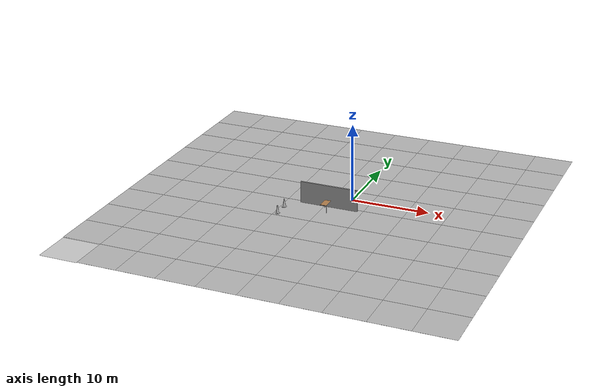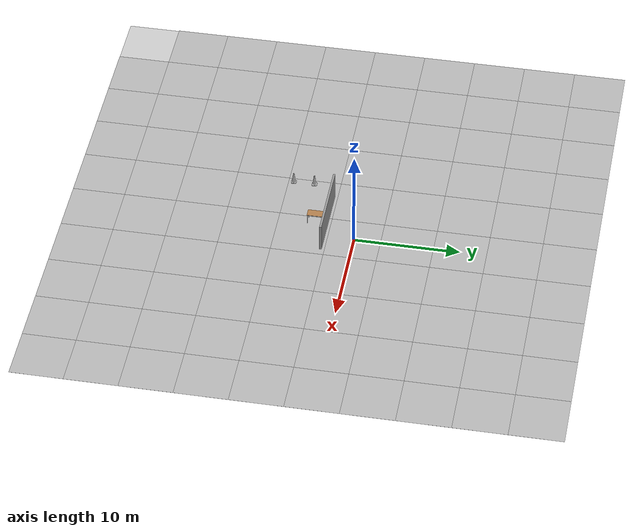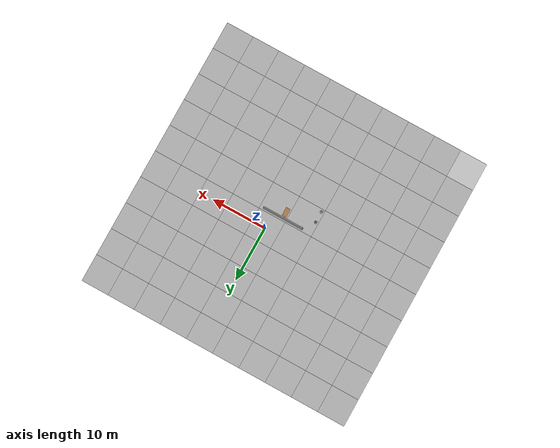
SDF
<sdf version="1.4">
 <world name="vrc_task_3">
  <scene><grid>false</grid><ambient>0.2 0.2 0.2 1.0</ambient></scene>
  <physics type="ode">
   <gravity>0 0 -9.81</gravity>
   <ode>
    <solver><type>quick</type><iters>50</iters><sor>1.4</sor></solver>
    <constraints>
     <cfm>0.0</cfm>
     <erp>0.2</erp>
     <contact_max_correcting_vel>100.0</contact_max_correcting_vel>
     <contact_surface_layer>0.0</contact_surface_layer>
    </constraints>
   </ode>
   <real_time_update_rate>1000</real_time_update_rate>
   <max_step_size>0.001</max_step_size>
  </physics>
  <light type="directional" name="sun">
   <pose>0 0 100 0 0 0</pose>
   <diffuse>0.9 0.9 0.9 1</diffuse>
   <specular>0.1 0.1 0.1 1</specular>
   <attenuation>
    <range>1000</range>
    <constant>0.9</constant>
    <linear>0.01</linear>
    <quadratic>0.001</quadratic>
   </attenuation>
   <direction>0.2 0.2 -0.9</direction>
  </light>
  <light type="point" name="light_bulb_2">
   <cast_shadows>false</cast_shadows>
   <pose>-10.6 -19.8 5 0 0 0</pose>
   <diffuse>0.5 0.5 0.5 1</diffuse>
   <specular>0.0 0.0 0.0 1</specular>
   <attenuation>
    <range>80</range>
    <constant>0.9</constant>
    <linear>0.01</linear>
    <quadratic>0.001</quadratic>
   </attenuation>
  </light>
  <include><uri>model://pavement_plane</uri></include>
  <include><uri>model://grey_wall</uri><static>true</static><pose>-1.927 -2.861 0 0 0 0</pose></include>
  <include>
   <uri>model://construction_cone</uri>
   <name>cone_1</name>
   <static>true</static>
   <pose>-7 -5 0 0 0 0</pose>
  </include>
  <include>
   <uri>model://construction_cone</uri>
   <name>cone_2</name>
   <static>true</static>
   <pose>-7 -7 0 0 0 0</pose>
  </include>
  <include><uri>model://table</uri><static>true</static><pose>-1.9 -4.0 0 0 0 1.5707</pose></include>
 </world>
</sdf>

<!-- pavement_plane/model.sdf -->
<sdf version='1.4'>
  <model name='pavement_plane'>
    <static>true</static>
    <link name='link'>
      <collision name='collision'>
        <geometry>
          <plane>
            <normal>0 0 1</normal>
            <size>50 50</size>
          </plane>
        </geometry>
        <surface>
          <friction>
            <ode>
              <mu>100</mu>
              <mu2>50</mu2>
            </ode>
          </friction>
        </surface>
      </collision>

  <visual name='visual_0'>
    <pose>-25 -25 0 0 0 0</pose>

      <cast_shadows>false</cast_shadows>
      <geometry>
        <plane>
          <normal>0 0 1</normal>
          <size>5 5</size>
        </plane>
      </geometry>
      <material>
        <script>
          <uri>model://pavement_plane/materials/scripts</uri>
          <uri>model://pavement_plane/materials/textures</uri>
          <name>vrc/pavement</name>
        </script>
      </material>
    </visual>

  <visual name='visual_1'>
    <pose>-20 -25 0 0 0 0</pose>

      <cast_shadows>false</cast_shadows>
      <geometry>
        <plane>
          <normal>0 0 1</normal>
          <size>5 5</size>
        </plane>
      </geometry>
      <material>
        <script>
          <uri>model://pavement_plane/materials/scripts</uri>
          <uri>model://pavement_plane/materials/textures</uri>
          <name>vrc/pavement</name>
        </script>
      </material>
    </visual>

  <visual name='visual_2'>
    <pose>-15 -25 0 0 0 0</pose>

      <cast_shadows>false</cast_shadows>
      <geometry>
        <plane>
          <normal>0 0 1</normal>
          <size>5 5</size>
        </plane>
      </geometry>
      <material>
        <script>
          <uri>model://pavement_plane/materials/scripts</uri>
          <uri>model://pavement_plane/materials/textures</uri>
          <name>vrc/pavement</name>
        </script>
      </material>
    </visual>

  <visual name='visual_3'>
    <pose>-10 -25 0 0 0 0</pose>

      <cast_shadows>false</cast_shadows>
      <geometry>
        <plane>
          <normal>0 0 1</normal>
          <size>5 5</size>
        </plane>
      </geometry>
      <material>
        <script>
          <uri>model://pavement_plane/materials/scripts</uri>
          <uri>model://pavement_plane/materials/textures</uri>
          <name>vrc/pavement</name>
        </script>
      </material>
    </visual>

  <visual name='visual_4'>
    <pose>-5 -25 0 0 0 0</pose>

      <cast_shadows>false</cast_shadows>
      <geometry>
        <plane>
          <normal>0 0 1</normal>
          <size>5 5</size>
        </plane>
      </geometry>
      <material>
        <script>
          <uri>model://pavement_plane/materials/scripts</uri>
          <uri>model://pavement_plane/materials/textures</uri>
          <name>vrc/pavement</name>
        </script>
      </material>
    </visual>

  <visual name='visual_5'>
    <pose>0 -25 0 0 0 0</pose>

      <cast_shadows>false</cast_shadows>
      <geometry>
        <plane>
          <normal>0 0 1</normal>
          <size>5 5</size>
        </plane>
      </geometry>
      <material>
        <script>
          <uri>model://pavement_plane/materials/scripts</uri>
          <uri>model://pavement_plane/materials/textures</uri>
          <name>vrc/pavement</name>
        </script>
      </material>
    </visual>

  <visual name='visual_6'>
    <pose>5 -25 0 0 0 0</pose>

      <cast_shadows>false</cast_shadows>
      <geometry>
        <plane>
          <normal>0 0 1</normal>
          <size>5 5</size>
        </plane>
      </geometry>
      <material>
        <script>
          <uri>model://pavement_plane/materials/scripts</uri>
          <uri>model://pavement_plane/materials/textures</uri>
          <name>vrc/pavement</name>
        </script>
      </material>
    </visual>

  <visual name='visual_7'>
    <pose>10 -25 0 0 0 0</pose>

      <cast_shadows>false</cast_shadows>
      <geometry>
        <plane>
          <normal>0 0 1</normal>
          <size>5 5</size>
        </plane>
      </geometry>
      <material>
        <script>
          <uri>model://pavement_plane/materials/scripts</uri>
          <uri>model://pavement_plane/materials/textures</uri>
          <name>vrc/pavement</name>
        </script>
      </material>
    </visual>

  <visual name='visual_8'>
    <pose>15 -25 0 0 0 0</pose>

      <cast_shadows>false</cast_shadows>
      <geometry>
        <plane>
          <normal>0 0 1</normal>
          <size>5 5</size>
        </plane>
      </geometry>
      <material>
        <script>
          <uri>model://pavement_plane/materials/scripts</uri>
          <uri>model://pavement_plane/materials/textures</uri>
          <name>vrc/pavement</name>
        </script>
      </material>
    </visual>

  <visual name='visual_9'>
    <pose>20 -25 0 0 0 0</pose>

      <cast_shadows>false</cast_shadows>
      <geometry>
        <plane>
          <normal>0 0 1</normal>
          <size>5 5</size>
        </plane>
      </geometry>
      <material>
        <script>
          <uri>model://pavement_plane/materials/scripts</uri>
          <uri>model://pavement_plane/materials/textures</uri>
          <name>vrc/pavement</name>
        </script>
      </material>
    </visual>

  <visual name='visual_10'>
    <pose>-25 -20 0 0 0 0</pose>

      <cast_shadows>false</cast_shadows>
      <geometry>
        <plane>
          <normal>0 0 1</normal>
          <size>5 5</size>
        </plane>
      </geometry>
      <material>
        <script>
          <uri>model://pavement_plane/materials/scripts</uri>
          <uri>model://pavement_plane/materials/textures</uri>
          <name>vrc/pavement</name>
        </script>
      </material>
    </visual>

  <visual name='visual_11'>
    <pose>-20 -20 0 0 0 0</pose>

      <cast_shadows>false</cast_shadows>
      <geometry>
        <plane>
          <normal>0 0 1</normal>
          <size>5 5</size>
        </plane>
      </geometry>
      <material>
        <script>
          <uri>model://pavement_plane/materials/scripts</uri>
          <uri>model://pavement_plane/materials/textures</uri>
          <name>vrc/pavement</name>
        </script>
      </material>
    </visual>

  <visual name='visual_12'>
    <pose>-15 -20 0 0 0 0</pose>

      <cast_shadows>false</cast_shadows>
      <geometry>
        <plane>
          <normal>0 0 1</normal>
          <size>5 5</size>
        </plane>
      </geometry>
      <material>
        <script>
          <uri>model://pavement_plane/materials/scripts</uri>
          <uri>model://pavement_plane/materials/textures</uri>
          <name>vrc/pavement</name>
        </script>
      </material>
    </visual>

  <visual name='visual_13'>
    <pose>-10 -20 0 0 0 0</pose>

      <cast_shadows>false</cast_shadows>
      <geometry>
        <plane>
          <normal>0 0 1</normal>
          <size>5 5</size>
        </plane>
      </geometry>
      <material>
        <script>
          <uri>model://pavement_plane/materials/scripts</uri>
          <uri>model://pavement_plane/materials/textures</uri>
          <name>vrc/pavement</name>
        </script>
      </material>
    </visual>

  <visual name='visual_14'>
    <pose>-5 -20 0 0 0 0</pose>

      <cast_shadows>false</cast_shadows>
      <geometry>
        <plane>
          <normal>0 0 1</normal>
          <size>5 5</size>
        </plane>
      </geometry>
      <material>
        <script>
          <uri>model://pavement_plane/materials/scripts</uri>
          <uri>model://pavement_plane/materials/textures</uri>
          <name>vrc/pavement</name>
        </script>
      </material>
    </visual>

  <visual name='visual_15'>
    <pose>0 -20 0 0 0 0</pose>

      <cast_shadows>false</cast_shadows>
      <geometry>
        <plane>
          <normal>0 0 1</normal>
          <size>5 5</size>
        </plane>
      </geometry>
      <material>
        <script>
          <uri>model://pavement_plane/materials/scripts</uri>
          <uri>model://pavement_plane/materials/textures</uri>
          <name>vrc/pavement</name>
        </script>
      </material>
    </visual>

  <visual name='visual_16'>
    <pose>5 -20 0 0 0 0</pose>

      <cast_shadows>false</cast_shadows>
      <geometry>
        <plane>
          <normal>0 0 1</normal>
          <size>5 5</size>
        </plane>
      </geometry>
      <material>
        <script>
          <uri>model://pavement_plane/materials/scripts</uri>
          <uri>model://pavement_plane/materials/textures</uri>
          <name>vrc/pavement</name>
        </script>
      </material>
    </visual>

  <visual name='visual_17'>
    <pose>10 -20 0 0 0 0</pose>

      <cast_shadows>false</cast_shadows>
      <geometry>
        <plane>
          <normal>0 0 1</normal>
          <size>5 5</size>
        </plane>
      </geometry>
      <material>
        <script>
          <uri>model://pavement_plane/materials/scripts</uri>
          <uri>model://pavement_plane/materials/textures</uri>
          <name>vrc/pavement</name>
        </script>
      </material>
    </visual>

  <visual name='visual_18'>
    <pose>15 -20 0 0 0 0</pose>

      <cast_shadows>false</cast_shadows>
      <geometry>
        <plane>
          <normal>0 0 1</normal>
          <size>5 5</size>
        </plane>
      </geometry>
      <material>
        <script>
          <uri>model://pavement_plane/materials/scripts</uri>
          <uri>model://pavement_plane/materials/textures</uri>
          <name>vrc/pavement</name>
        </script>
      </material>
    </visual>

  <visual name='visual_19'>
    <pose>20 -20 0 0 0 0</pose>

      <cast_shadows>false</cast_shadows>
      <geometry>
        <plane>
          <normal>0 0 1</normal>
          <size>5 5</size>
        </plane>
      </geometry>
      <material>
        <script>
          <uri>model://pavement_plane/materials/scripts</uri>
          <uri>model://pavement_plane/materials/textures</uri>
          <name>vrc/pavement</name>
        </script>
      </material>
    </visual>

  <visual name='visual_20'>
    <pose>-25 -15 0 0 0 0</pose>

      <cast_shadows>false</cast_shadows>
      <geometry>
        <plane>
          <normal>0 0 1</normal>
          <size>5 5</size>
        </plane>
      </geometry>
      <material>
        <script>
          <uri>model://pavement_plane/materials/scripts</uri>
          <uri>model://pavement_plane/materials/textures</uri>
          <name>vrc/pavement</name>
        </script>
      </material>
    </visual>

  <visual name='visual_21'>
    <pose>-20 -15 0 0 0 0</pose>

      <cast_shadows>false</cast_shadows>
      <geometry>
        <plane>
          <normal>0 0 1</normal>
          <size>5 5</size>
        </plane>
      </geometry>
      <material>
        <script>
          <uri>model://pavement_plane/materials/scripts</uri>
          <uri>model://pavement_plane/materials/textures</uri>
          <name>vrc/pavement</name>
        </script>
      </material>
    </visual>

  <visual name='visual_22'>
    <pose>-15 -15 0 0 0 0</pose>

      <cast_shadows>false</cast_shadows>
      <geometry>
        <plane>
          <normal>0 0 1</normal>
          <size>5 5</size>
        </plane>
      </geometry>
      <material>
        <script>
          <uri>model://pavement_plane/materials/scripts</uri>
          <uri>model://pavement_plane/materials/textures</uri>
          <name>vrc/pavement</name>
        </script>
      </material>
    </visual>

  <visual name='visual_23'>
    <pose>-10 -15 0 0 0 0</pose>

      <cast_shadows>false</cast_shadows>
      <geometry>
        <plane>
          <normal>0 0 1</normal>
          <size>5 5</size>
        </plane>
      </geometry>
      <material>
        <script>
          <uri>model://pavement_plane/materials/scripts</uri>
          <uri>model://pavement_plane/materials/textures</uri>
          <name>vrc/pavement</name>
        </script>
      </material>
    </visual>

  <visual name='visual_24'>
    <pose>-5 -15 0 0 0 0</pose>

      <cast_shadows>false</cast_shadows>
      <geometry>
        <plane>
          <normal>0 0 1</normal>
          <size>5 5</size>
        </plane>
      </geometry>
      <material>
        <script>
          <uri>model://pavement_plane/materials/scripts</uri>
          <uri>model://pavement_plane/materials/textures</uri>
          <name>vrc/pavement</name>
        </script>
      </material>
    </visual>

  <visual name='visual_25'>
    <pose>0 -15 0 0 0 0</pose>

      <cast_shadows>false</cast_shadows>
      <geometry>
        <plane>
          <normal>0 0 1</normal>
          <size>5 5</size>
        </plane>
      </geometry>
      <material>
        <script>
          <uri>model://pavement_plane/materials/scripts</uri>
          <uri>model://pavement_plane/materials/textures</uri>
          <name>vrc/pavement</name>
        </script>
      </material>
    </visual>

  <visual name='visual_26'>
    <pose>5 -15 0 0 0 0</pose>

      <cast_shadows>false</cast_shadows>
      <geometry>
        <plane>
          <normal>0 0 1</normal>
          <size>5 5</size>
        </plane>
      </geometry>
      <material>
        <script>
          <uri>model://pavement_plane/materials/scripts</uri>
          <uri>model://pavement_plane/materials/textures</uri>
          <name>vrc/pavement</name>
        </script>
      </material>
    </visual>

  <visual name='visual_27'>
    <pose>10 -15 0 0 0 0</pose>

      <cast_shadows>false</cast_shadows>
      <geometry>
        <plane>
          <normal>0 0 1</normal>
          <size>5 5</size>
        </plane>
      </geometry>
      <material>
        <script>
          <uri>model://pavement_plane/materials/scripts</uri>
          <uri>model://pavement_plane/materials/textures</uri>
          <name>vrc/pavement</name>
        </script>
      </material>
    </visual>

  <visual name='visual_28'>
    <pose>15 -15 0 0 0 0</pose>

      <cast_shadows>false</cast_shadows>
      <geometry>
        <plane>
          <normal>0 0 1</normal>
          <size>5 5</size>
        </plane>
      </geometry>
      <material>
        <script>
          <uri>model://pavement_plane/materials/scripts</uri>
          <uri>model://pavement_plane/materials/textures</uri>
          <name>vrc/pavement</name>
        </script>
      </material>
    </visual>

  <visual name='visual_29'>
    <pose>20 -15 0 0 0 0</pose>

      <cast_shadows>false</cast_shadows>
      <geometry>
        <plane>
          <normal>0 0 1</normal>
          <size>5 5</size>
        </plane>
      </geometry>
      <material>
        <script>
          <uri>model://pavement_plane/materials/scripts</uri>
          <uri>model://pavement_plane/materials/textures</uri>
          <name>vrc/pavement</name>
        </script>
      </material>
    </visual>

  <visual name='visual_30'>
    <pose>-25 -10 0 0 0 0</pose>

      <cast_shadows>false</cast_shadows>
      <geometry>
        <plane>
          <normal>0 0 1</normal>
          <size>5 5</size>
        </plane>
      </geometry>
      <material>
        <script>
          <uri>model://pavement_plane/materials/scripts</uri>
          <uri>model://pavement_plane/materials/textures</uri>
          <name>vrc/pavement</name>
        </script>
      </material>
    </visual>

  <visual name='visual_31'>
    <pose>-20 -10 0 0 0 0</pose>

      <cast_shadows>false</cast_shadows>
      <geometry>
        <plane>
          <normal>0 0 1</normal>
          <size>5 5</size>
        </plane>
      </geometry>
      <material>
        <script>
          <uri>model://pavement_plane/materials/scripts</uri>
          <uri>model://pavement_plane/materials/textures</uri>
          <name>vrc/pavement</name>
        </script>
      </material>
    </visual>

  <visual name='visual_32'>
    <pose>-15 -10 0 0 0 0</pose>

      <cast_shadows>false</cast_shadows>
      <geometry>
        <plane>
          <normal>0 0 1</normal>
          <size>5 5</size>
        </plane>
      </geometry>
      <material>
        <script>
          <uri>model://pavement_plane/materials/scripts</uri>
          <uri>model://pavement_plane/materials/textures</uri>
          <name>vrc/pavement</name>
        </script>
      </material>
    </visual>

  <visual name='visual_33'>
    <pose>-10 -10 0 0 0 0</pose>

      <cast_shadows>false</cast_shadows>
      <geometry>
        <plane>
          <normal>0 0 1</normal>
          <size>5 5</size>
        </plane>
      </geometry>
      <material>
        <script>
          <uri>model://pavement_plane/materials/scripts</uri>
          <uri>model://pavement_plane/materials/textures</uri>
          <name>vrc/pavement</name>
        </script>
      </material>
    </visual>

  <visual name='visual_34'>
    <pose>-5 -10 0 0 0 0</pose>

      <cast_shadows>false</cast_shadows>
      <geometry>
        <plane>
          <normal>0 0 1</normal>
          <size>5 5</size>
        </plane>
      </geometry>
      <material>
        <script>
          <uri>model://pavement_plane/materials/scripts</uri>
          <uri>model://pavement_plane/materials/textures</uri>
          <name>vrc/pavement</name>
        </script>
      </material>
    </visual>

  <visual name='visual_35'>
    <pose>0 -10 0 0 0 0</pose>

      <cast_shadows>false</cast_shadows>
      <geometry>
        <plane>
          <normal>0 0 1</normal>
          <size>5 5</size>
        </plane>
      </geometry>
      <material>
        <script>
          <uri>model://pavement_plane/materials/scripts</uri>
          <uri>model://pavement_plane/materials/textures</uri>
          <name>vrc/pavement</name>
        </script>
      </material>
    </visual>

  <visual name='visual_36'>
    <pose>5 -10 0 0 0 0</pose>

      <cast_shadows>false</cast_shadows>
      <geometry>
        <plane>
          <normal>0 0 1</normal>
          <size>5 5</size>
        </plane>
      </geometry>
      <material>
        <script>
          <uri>model://pavement_plane/materials/scripts</uri>
          <uri>model://pavement_plane/materials/textures</uri>
          <name>vrc/pavement</name>
        </script>
      </material>
    </visual>

  <visual name='visual_37'>
    <pose>10 -10 0 0 0 0</pose>

      <cast_shadows>false</cast_shadows>
      <geometry>
        <plane>
          <normal>0 0 1</normal>
          <size>5 5</size>
        </plane>
      </geometry>
      <material>
        <script>
          <uri>model://pavement_plane/materials/scripts</uri>
          <uri>model://pavement_plane/materials/textures</uri>
          <name>vrc/pavement</name>
        </script>
      </material>
    </visual>

  <visual name='visual_38'>
    <pose>15 -10 0 0 0 0</pose>

      <cast_shadows>false</cast_shadows>
      <geometry>
        <plane>
          <normal>0 0 1</normal>
          <size>5 5</size>
        </plane>
      </geometry>
      <material>
        <script>
          <uri>model://pavement_plane/materials/scripts</uri>
          <uri>model://pavement_plane/materials/textures</uri>
          <name>vrc/pavement</name>
        </script>
      </material>
    </visual>

  <visual name='visual_39'>
    <pose>20 -10 0 0 0 0</pose>

      <cast_shadows>false</cast_shadows>
      <geometry>
        <plane>
          <normal>0 0 1</normal>
          <size>5 5</size>
        </plane>
      </geometry>
      <material>
        <script>
          <uri>model://pavement_plane/materials/scripts</uri>
          <uri>model://pavement_plane/materials/textures</uri>
          <name>vrc/pavement</name>
        </script>
      </material>
    </visual>

  <visual name='visual_40'>
    <pose>-25 -5 0 0 0 0</pose>

      <cast_shadows>false</cast_shadows>
      <geometry>
        <plane>
          <normal>0 0 1</normal>
          <size>5 5</size>
        </plane>
      </geometry>
      <material>
        <script>
          <uri>model://pavement_plane/materials/scripts</uri>
          <uri>model://pavement_plane/materials/textures</uri>
          <name>vrc/pavement</name>
        </script>
      </material>
    </visual>

  <visual name='visual_41'>
    <pose>-20 -5 0 0 0 0</pose>

      <cast_shadows>false</cast_shadows>
      <geometry>
        <plane>
          <normal>0 0 1</normal>
          <size>5 5</size>
        </plane>
      </geometry>
      <material>
        <script>
          <uri>model://pavement_plane/materials/scripts</uri>
          <uri>model://pavement_plane/materials/textures</uri>
          <name>vrc/pavement</name>
        </script>
      </material>
    </visual>

  <visual name='visual_42'>
    <pose>-15 -5 0 0 0 0</pose>

      <cast_shadows>false</cast_shadows>
      <geometry>
        <plane>
          <normal>0 0 1</normal>
          <size>5 5</size>
        </plane>
      </geometry>
      <material>
        <script>
          <uri>model://pavement_plane/materials/scripts</uri>
          <uri>model://pavement_plane/materials/textures</uri>
          <name>vrc/pavement</name>
        </script>
      </material>
    </visual>

  <visual name='visual_43'>
    <pose>-10 -5 0 0 0 0</pose>

      <cast_shadows>false</cast_shadows>
      <geometry>
        <plane>
          <normal>0 0 1</normal>
          <size>5 5</size>
        </plane>
      </geometry>
      <material>
        <script>
          <uri>model://pavement_plane/materials/scripts</uri>
          <uri>model://pavement_plane/materials/textures</uri>
          <name>vrc/pavement</name>
        </script>
      </material>
    </visual>

  <visual name='visual_44'>
    <pose>-5 -5 0 0 0 0</pose>

      <cast_shadows>false</cast_shadows>
      <geometry>
        <plane>
          <normal>0 0 1</normal>
          <size>5 5</size>
        </plane>
      </geometry>
      <material>
        <script>
          <uri>model://pavement_plane/materials/scripts</uri>
          <uri>model://pavement_plane/materials/textures</uri>
          <name>vrc/pavement</name>
        </script>
      </material>
    </visual>

  <visual name='visual_45'>
    <pose>0 -5 0 0 0 0</pose>

      <cast_shadows>false</cast_shadows>
      <geometry>
        <plane>
          <normal>0 0 1</normal>
          <size>5 5</size>
        </plane>
      </geometry>
      <material>
        <script>
          <uri>model://pavement_plane/materials/scripts</uri>
          <uri>model://pavement_plane/materials/textures</uri>
          <name>vrc/pavement</name>
        </script>
      </material>
    </visual>

  <visual name='visual_46'>
    <pose>5 -5 0 0 0 0</pose>

      <cast_shadows>false</cast_shadows>
      <geometry>
        <plane>
          <normal>0 0 1</normal>
          <size>5 5</size>
        </plane>
      </geometry>
      <material>
        <script>
          <uri>model://pavement_plane/materials/scripts</uri>
          <uri>model://pavement_plane/materials/textures</uri>
          <name>vrc/pavement</name>
        </script>
      </material>
    </visual>

  <visual name='visual_47'>
    <pose>10 -5 0 0 0 0</pose>

      <cast_shadows>false</cast_shadows>
      <geometry>
        <plane>
          <normal>0 0 1</normal>
          <size>5 5</size>
        </plane>
      </geometry>
      <material>
        <script>
          <uri>model://pavement_plane/materials/scripts</uri>
          <uri>model://pavement_plane/materials/textures</uri>
          <name>vrc/pavement</name>
        </script>
      </material>
    </visual>

  <visual name='visual_48'>
    <pose>15 -5 0 0 0 0</pose>

      <cast_shadows>false</cast_shadows>
      <geometry>
        <plane>
          <normal>0 0 1</normal>
          <size>5 5</size>
        </plane>
      </geometry>
      <material>
        <script>
          <uri>model://pavement_plane/materials/scripts</uri>
          <uri>model://pavement_plane/materials/textures</uri>
          <name>vrc/pavement</name>
        </script>
      </material>
    </visual>

  <visual name='visual_49'>
    <pose>20 -5 0 0 0 0</pose>

      <cast_shadows>false</cast_shadows>
      <geometry>
        <plane>
          <normal>0 0 1</normal>
          <size>5 5</size>
        </plane>
      </geometry>
      <material>
        <script>
          <uri>model://pavement_plane/materials/scripts</uri>
          <uri>model://pavement_plane/materials/textures</uri>
          <name>vrc/pavement</name>
        </script>
      </material>
    </visual>

  <visual name='visual_50'>
    <pose>-25 0 0 0 0 0</pose>

      <cast_shadows>false</cast_shadows>
      <geometry>
        <plane>
          <normal>0 0 1</normal>
          <size>5 5</size>
        </plane>
      </geometry>
      <material>
        <script>
          <uri>model://pavement_plane/materials/scripts</uri>
          <uri>model://pavement_plane/materials/textures</uri>
          <name>vrc/pavement</name>
        </script>
      </material>
    </visual>

  <visual name='visual_51'>
    <pose>-20 0 0 0 0 0</pose>

      <cast_shadows>false</cast_shadows>
      <geometry>
        <plane>
          <normal>0 0 1</normal>
          <size>5 5</size>
        </plane>
      </geometry>
      <material>
        <script>
          <uri>model://pavement_plane/materials/scripts</uri>
          <uri>model://pavement_plane/materials/textures</uri>
          <name>vrc/pavement</name>
        </script>
      </material>
    </visual>

  <visual name='visual_52'>
    <pose>-15 0 0 0 0 0</pose>

      <cast_shadows>false</cast_shadows>
      <geometry>
        <plane>
          <normal>0 0 1</normal>
          <size>5 5</size>
        </plane>
      </geometry>
      <material>
        <script>
          <uri>model://pavement_plane/materials/scripts</uri>
          <uri>model://pavement_plane/materials/textures</uri>
          <name>vrc/pavement</name>
        </script>
      </material>
    </visual>

  <visual name='visual_53'>
    <pose>-10 0 0 0 0 0</pose>

      <cast_shadows>false</cast_shadows>
      <geometry>
        <plane>
          <normal>0 0 1</normal>
          <size>5 5</size>
        </plane>
      </geometry>
      <material>
        <script>
          <uri>model://pavement_plane/materials/scripts</uri>
          <uri>model://pavement_plane/materials/textures</uri>
          <name>vrc/pavement</name>
        </script>
      </material>
    </visual>

  <visual name='visual_54'>
    <pose>-5 0 0 0 0 0</pose>

      <cast_shadows>false</cast_shadows>
      <geometry>
        <plane>
          <normal>0 0 1</normal>
          <size>5 5</size>
        </plane>
      </geometry>
      <material>
        <script>
          <uri>model://pavement_plane/materials/scripts</uri>
          <uri>model://pavement_plane/materials/textures</uri>
          <name>vrc/pavement</name>
        </script>
      </material>
    </visual>

  <visual name='visual_55'>
    <pose>0 0 0 0 0 0</pose>

      <cast_shadows>false</cast_shadows>
      <geometry>
        <plane>
          <normal>0 0 1</normal>
          <size>5 5</size>
        </plane>
      </geometry>
      <material>
        <script>
          <uri>model://pavement_plane/materials/scripts</uri>
          <uri>model://pavement_plane/materials/textures</uri>
          <name>vrc/pavement</name>
        </script>
      </material>
    </visual>

  <visual name='visual_56'>
    <pose>5 0 0 0 0 0</pose>

      <cast_shadows>false</cast_shadows>
      <geometry>
        <plane>
          <normal>0 0 1</normal>
          <size>5 5</size>
        </plane>
      </geometry>
      <material>
        <script>
          <uri>model://pavement_plane/materials/scripts</uri>
          <uri>model://pavement_plane/materials/textures</uri>
          <name>vrc/pavement</name>
        </script>
      </material>
    </visual>

  <visual name='visual_57'>
    <pose>10 0 0 0 0 0</pose>

      <cast_shadows>false</cast_shadows>
      <geometry>
        <plane>
          <normal>0 0 1</normal>
          <size>5 5</size>
        </plane>
      </geometry>
      <material>
        <script>
          <uri>model://pavement_plane/materials/scripts</uri>
          <uri>model://pavement_plane/materials/textures</uri>
          <name>vrc/pavement</name>
        </script>
      </material>
    </visual>

  <visual name='visual_58'>
    <pose>15 0 0 0 0 0</pose>

      <cast_shadows>false</cast_shadows>
      <geometry>
        <plane>
          <normal>0 0 1</normal>
          <size>5 5</size>
        </plane>
      </geometry>
      <material>
        <script>
          <uri>model://pavement_plane/materials/scripts</uri>
          <uri>model://pavement_plane/materials/textures</uri>
          <name>vrc/pavement</name>
        </script>
      </material>
    </visual>

  <visual name='visual_59'>
    <pose>20 0 0 0 0 0</pose>

      <cast_shadows>false</cast_shadows>
      <geometry>
        <plane>
          <normal>0 0 1</normal>
          <size>5 5</size>
        </plane>
      </geometry>
      <material>
        <script>
          <uri>model://pavement_plane/materials/scripts</uri>
          <uri>model://pavement_plane/materials/textures</uri>
          <name>vrc/pavement</name>
        </script>
      </material>
    </visual>

  <visual name='visual_60'>
    <pose>-25 5 0 0 0 0</pose>

      <cast_shadows>false</cast_shadows>
      <geometry>
        <plane>
          <normal>0 0 1</normal>
          <size>5 5</size>
        </plane>
      </geometry>
      <material>
        <script>
          <uri>model://pavement_plane/materials/scripts</uri>
          <uri>model://pavement_plane/materials/textures</uri>
          <name>vrc/pavement</name>
        </script>
      </material>
    </visual>

  <visual name='visual_61'>
    <pose>-20 5 0 0 0 0</pose>

      <cast_shadows>false</cast_shadows>
      <geometry>
        <plane>
          <normal>0 0 1</normal>
          <size>5 5</size>
        </plane>
      </geometry>
      <material>
        <script>
          <uri>model://pavement_plane/materials/scripts</uri>
          <uri>model://pavement_plane/materials/textures</uri>
          <name>vrc/pavement</name>
        </script>
      </material>
    </visual>

  <visual name='visual_62'>
    <pose>-15 5 0 0 0 0</pose>

      <cast_shadows>false</cast_shadows>
      <geometry>
        <plane>
          <normal>0 0 1</normal>
          <size>5 5</size>
        </plane>
      </geometry>
      <material>
        <script>
          <uri>model://pavement_plane/materials/scripts</uri>
          <uri>model://pavement_plane/materials/textures</uri>
          <name>vrc/pavement</name>
        </script>
      </material>
    </visual>

  <visual name='visual_63'>
    <pose>-10 5 0 0 0 0</pose>

      <cast_shadows>false</cast_shadows>
      <geometry>
        <plane>
          <normal>0 0 1</normal>
          <size>5 5</size>
        </plane>
      </geometry>
      <material>
        <script>
          <uri>model://pavement_plane/materials/scripts</uri>
          <uri>model://pavement_plane/materials/textures</uri>
          <name>vrc/pavement</name>
        </script>
      </material>
    </visual>

  <visual name='visual_64'>
    <pose>-5 5 0 0 0 0</pose>

      <cast_shadows>false</cast_shadows>
      <geometry>
        <plane>
          <normal>0 0 1</normal>
          <size>5 5</size>
        </plane>
      </geometry>
      <material>
        <script>
          <uri>model://pavement_plane/materials/scripts</uri>
          <uri>model://pavement_plane/materials/textures</uri>
          <name>vrc/pavement</name>
        </script>
      </material>
    </visual>

  <visual name='visual_65'>
    <pose>0 5 0 0 0 0</pose>

      <cast_shadows>false</cast_shadows>
      <geometry>
        <plane>
          <normal>0 0 1</normal>
          <size>5 5</size>
        </plane>
      </geometry>
      <material>
        <script>
          <uri>model://pavement_plane/materials/scripts</uri>
          <uri>model://pavement_plane/materials/textures</uri>
          <name>vrc/pavement</name>
        </script>
      </material>
    </visual>

  <visual name='visual_66'>
    <pose>5 5 0 0 0 0</pose>

      <cast_shadows>false</cast_shadows>
      <geometry>
        <plane>
          <normal>0 0 1</normal>
          <size>5 5</size>
        </plane>
      </geometry>
      <material>
        <script>
          <uri>model://pavement_plane/materials/scripts</uri>
          <uri>model://pavement_plane/materials/textures</uri>
          <name>vrc/pavement</name>
        </script>
      </material>
    </visual>

  <visual name='visual_67'>
    <pose>10 5 0 0 0 0</pose>

      <cast_shadows>false</cast_shadows>
      <geometry>
        <plane>
          <normal>0 0 1</normal>
          <size>5 5</size>
        </plane>
      </geometry>
      <material>
        <script>
          <uri>model://pavement_plane/materials/scripts</uri>
          <uri>model://pavement_plane/materials/textures</uri>
          <name>vrc/pavement</name>
        </script>
      </material>
    </visual>

  <visual name='visual_68'>
    <pose>15 5 0 0 0 0</pose>

      <cast_shadows>false</cast_shadows>
      <geometry>
        <plane>
          <normal>0 0 1</normal>
          <size>5 5</size>
        </plane>
      </geometry>
      <material>
        <script>
          <uri>model://pavement_plane/materials/scripts</uri>
          <uri>model://pavement_plane/materials/textures</uri>
          <name>vrc/pavement</name>
        </script>
      </material>
    </visual>

  <visual name='visual_69'>
    <pose>20 5 0 0 0 0</pose>

      <cast_shadows>false</cast_shadows>
      <geometry>
        <plane>
          <normal>0 0 1</normal>
          <size>5 5</size>
        </plane>
      </geometry>
      <material>
        <script>
          <uri>model://pavement_plane/materials/scripts</uri>
          <uri>model://pavement_plane/materials/textures</uri>
          <name>vrc/pavement</name>
        </script>
      </material>
    </visual>

  <visual name='visual_70'>
    <pose>-25 10 0 0 0 0</pose>

      <cast_shadows>false</cast_shadows>
      <geometry>
        <plane>
          <normal>0 0 1</normal>
          <size>5 5</size>
        </plane>
      </geometry>
      <material>
        <script>
          <uri>model://pavement_plane/materials/scripts</uri>
          <uri>model://pavement_plane/materials/textures</uri>
          <name>vrc/pavement</name>
        </script>
      </material>
    </visual>

  <visual name='visual_71'>
    <pose>-20 10 0 0 0 0</pose>

      <cast_shadows>false</cast_shadows>
      <geometry>
        <plane>
          <normal>0 0 1</normal>
          <size>5 5</size>
        </plane>
      </geometry>
      <material>
        <script>
          <uri>model://pavement_plane/materials/scripts</uri>
          <uri>model://pavement_plane/materials/textures</uri>
          <name>vrc/pavement</name>
        </script>
      </material>
    </visual>

  <visual name='visual_72'>
    <pose>-15 10 0 0 0 0</pose>

      <cast_shadows>false</cast_shadows>
      <geometry>
        <plane>
          <normal>0 0 1</normal>
          <size>5 5</size>
        </plane>
      </geometry>
      <material>
        <script>
          <uri>model://pavement_plane/materials/scripts</uri>
          <uri>model://pavement_plane/materials/textures</uri>
          <name>vrc/pavement</name>
        </script>
      </material>
    </visual>

  <visual name='visual_73'>
    <pose>-10 10 0 0 0 0</pose>

      <cast_shadows>false</cast_shadows>
      <geometry>
        <plane>
          <normal>0 0 1</normal>
          <size>5 5</size>
        </plane>
      </geometry>
      <material>
        <script>
          <uri>model://pavement_plane/materials/scripts</uri>
          <uri>model://pavement_plane/materials/textures</uri>
          <name>vrc/pavement</name>
        </script>
      </material>
    </visual>

  <visual name='visual_74'>
    <pose>-5 10 0 0 0 0</pose>

      <cast_shadows>false</cast_shadows>
      <geometry>
        <plane>
          <normal>0 0 1</normal>
          <size>5 5</size>
        </plane>
      </geometry>
      <material>
        <script>
          <uri>model://pavement_plane/materials/scripts</uri>
          <uri>model://pavement_plane/materials/textures</uri>
          <name>vrc/pavement</name>
        </script>
      </material>
    </visual>

  <visual name='visual_75'>
    <pose>0 10 0 0 0 0</pose>

      <cast_shadows>false</cast_shadows>
      <geometry>
        <plane>
          <normal>0 0 1</normal>
          <size>5 5</size>
        </plane>
      </geometry>
      <material>
        <script>
          <uri>model://pavement_plane/materials/scripts</uri>
          <uri>model://pavement_plane/materials/textures</uri>
          <name>vrc/pavement</name>
        </script>
      </material>
    </visual>

  <visual name='visual_76'>
    <pose>5 10 0 0 0 0</pose>

      <cast_shadows>false</cast_shadows>
      <geometry>
        <plane>
          <normal>0 0 1</normal>
          <size>5 5</size>
        </plane>
      </geometry>
      <material>
        <script>
          <uri>model://pavement_plane/materials/scripts</uri>
          <uri>model://pavement_plane/materials/textures</uri>
          <name>vrc/pavement</name>
        </script>
      </material>
    </visual>

  <visual name='visual_77'>
    <pose>10 10 0 0 0 0</pose>

      <cast_shadows>false</cast_shadows>
      <geometry>
        <plane>
          <normal>0 0 1</normal>
          <size>5 5</size>
        </plane>
      </geometry>
      <material>
        <script>
          <uri>model://pavement_plane/materials/scripts</uri>
          <uri>model://pavement_plane/materials/textures</uri>
          <name>vrc/pavement</name>
        </script>
      </material>
    </visual>

  <visual name='visual_78'>
    <pose>15 10 0 0 0 0</pose>

      <cast_shadows>false</cast_shadows>
      <geometry>
        <plane>
          <normal>0 0 1</normal>
          <size>5 5</size>
        </plane>
      </geometry>
      <material>
        <script>
          <uri>model://pavement_plane/materials/scripts</uri>
          <uri>model://pavement_plane/materials/textures</uri>
          <name>vrc/pavement</name>
        </script>
      </material>
    </visual>

  <visual name='visual_79'>
    <pose>20 10 0 0 0 0</pose>

      <cast_shadows>false</cast_shadows>
      <geometry>
        <plane>
          <normal>0 0 1</normal>
          <size>5 5</size>
        </plane>
      </geometry>
      <material>
        <script>
          <uri>model://pavement_plane/materials/scripts</uri>
          <uri>model://pavement_plane/materials/textures</uri>
          <name>vrc/pavement</name>
        </script>
      </material>
    </visual>

  <visual name='visual_80'>
    <pose>-25 15 0 0 0 0</pose>

      <cast_shadows>false</cast_shadows>
      <geometry>
        <plane>
          <normal>0 0 1</normal>
          <size>5 5</size>
        </plane>
      </geometry>
      <material>
        <script>
          <uri>model://pavement_plane/materials/scripts</uri>
          <uri>model://pavement_plane/materials/textures</uri>
          <name>vrc/pavement</name>
        </script>
      </material>
    </visual>

  <visual name='visual_81'>
    <pose>-20 15 0 0 0 0</pose>

      <cast_shadows>false</cast_shadows>
      <geometry>
        <plane>
          <normal>0 0 1</normal>
          <size>5 5</size>
        </plane>
      </geometry>
      <material>
        <script>
          <uri>model://pavement_plane/materials/scripts</uri>
          <uri>model://pavement_plane/materials/textures</uri>
          <name>vrc/pavement</name>
        </script>
      </material>
    </visual>

  <visual name='visual_82'>
    <pose>-15 15 0 0 0 0</pose>

      <cast_shadows>false</cast_shadows>
      <geometry>
        <plane>
          <normal>0 0 1</normal>
          <size>5 5</size>
        </plane>
      </geometry>
      <material>
        <script>
          <uri>model://pavement_plane/materials/scripts</uri>
          <uri>model://pavement_plane/materials/textures</uri>
          <name>vrc/pavement</name>
        </script>
      </material>
    </visual>

  <visual name='visual_83'>
    <pose>-10 15 0 0 0 0</pose>

      <cast_shadows>false</cast_shadows>
      <geometry>
        <plane>
          <normal>0 0 1</normal>
          <size>5 5</size>
        </plane>
      </geometry>
      <material>
        <script>
          <uri>model://pavement_plane/materials/scripts</uri>
          <uri>model://pavement_plane/materials/textures</uri>
          <name>vrc/pavement</name>
        </script>
      </material>
    </visual>

  <visual name='visual_84'>
    <pose>-5 15 0 0 0 0</pose>

      <cast_shadows>false</cast_shadows>
      <geometry>
        <plane>
          <normal>0 0 1</normal>
          <size>5 5</size>
        </plane>
      </geometry>
      <material>
        <script>
          <uri>model://pavement_plane/materials/scripts</uri>
          <uri>model://pavement_plane/materials/textures</uri>
          <name>vrc/pavement</name>
        </script>
      </material>
    </visual>

  <visual name='visual_85'>
    <pose>0 15 0 0 0 0</pose>

      <cast_shadows>false</cast_shadows>
      <geometry>
        <plane>
          <normal>0 0 1</normal>
          <size>5 5</size>
        </plane>
      </geometry>
      <material>
        <script>
          <uri>model://pavement_plane/materials/scripts</uri>
          <uri>model://pavement_plane/materials/textures</uri>
          <name>vrc/pavement</name>
        </script>
      </material>
    </visual>

  <visual name='visual_86'>
    <pose>5 15 0 0 0 0</pose>

      <cast_shadows>false</cast_shadows>
      <geometry>
        <plane>
          <normal>0 0 1</normal>
          <size>5 5</size>
        </plane>
      </geometry>
      <material>
        <script>
          <uri>model://pavement_plane/materials/scripts</uri>
          <uri>model://pavement_plane/materials/textures</uri>
          <name>vrc/pavement</name>
        </script>
      </material>
    </visual>

  <visual name='visual_87'>
    <pose>10 15 0 0 0 0</pose>

      <cast_shadows>false</cast_shadows>
      <geometry>
        <plane>
          <normal>0 0 1</normal>
          <size>5 5</size>
        </plane>
      </geometry>
      <material>
        <script>
          <uri>model://pavement_plane/materials/scripts</uri>
          <uri>model://pavement_plane/materials/textures</uri>
          <name>vrc/pavement</name>
        </script>
      </material>
    </visual>

  <visual name='visual_88'>
    <pose>15 15 0 0 0 0</pose>

      <cast_shadows>false</cast_shadows>
      <geometry>
        <plane>
          <normal>0 0 1</normal>
          <size>5 5</size>
        </plane>
      </geometry>
      <material>
        <script>
          <uri>model://pavement_plane/materials/scripts</uri>
          <uri>model://pavement_plane/materials/textures</uri>
          <name>vrc/pavement</name>
        </script>
      </material>
    </visual>

  <visual name='visual_89'>
    <pose>20 15 0 0 0 0</pose>

      <cast_shadows>false</cast_shadows>
      <geometry>
        <plane>
          <normal>0 0 1</normal>
          <size>5 5</size>
        </plane>
      </geometry>
      <material>
        <script>
          <uri>model://pavement_plane/materials/scripts</uri>
          <uri>model://pavement_plane/materials/textures</uri>
          <name>vrc/pavement</name>
        </script>
      </material>
    </visual>

  <visual name='visual_90'>
    <pose>-25 20 0 0 0 0</pose>

      <cast_shadows>false</cast_shadows>
      <geometry>
        <plane>
          <normal>0 0 1</normal>
          <size>5 5</size>
        </plane>
      </geometry>
      <material>
        <script>
          <uri>model://pavement_plane/materials/scripts</uri>
          <uri>model://pavement_plane/materials/textures</uri>
          <name>vrc/pavement</name>
        </script>
      </material>
    </visual>

  <visual name='visual_91'>
    <pose>-20 20 0 0 0 0</pose>

      <cast_shadows>false</cast_shadows>
      <geometry>
        <plane>
          <normal>0 0 1</normal>
          <size>5 5</size>
        </plane>
      </geometry>
      <material>
        <script>
          <uri>model://pavement_plane/materials/scripts</uri>
          <uri>model://pavement_plane/materials/textures</uri>
          <name>vrc/pavement</name>
        </script>
      </material>
    </visual>

  <visual name='visual_92'>
    <pose>-15 20 0 0 0 0</pose>

      <cast_shadows>false</cast_shadows>
      <geometry>
        <plane>
          <normal>0 0 1</normal>
          <size>5 5</size>
        </plane>
      </geometry>
      <material>
        <script>
          <uri>model://pavement_plane/materials/scripts</uri>
          <uri>model://pavement_plane/materials/textures</uri>
          <name>vrc/pavement</name>
        </script>
      </material>
    </visual>

  <visual name='visual_93'>
    <pose>-10 20 0 0 0 0</pose>

      <cast_shadows>false</cast_shadows>
      <geometry>
        <plane>
          <normal>0 0 1</normal>
          <size>5 5</size>
        </plane>
      </geometry>
      <material>
        <script>
          <uri>model://pavement_plane/materials/scripts</uri>
          <uri>model://pavement_plane/materials/textures</uri>
          <name>vrc/pavement</name>
        </script>
      </material>
    </visual>

  <visual name='visual_94'>
    <pose>-5 20 0 0 0 0</pose>

      <cast_shadows>false</cast_shadows>
      <geometry>
        <plane>
          <normal>0 0 1</normal>
          <size>5 5</size>
        </plane>
      </geometry>
      <material>
        <script>
          <uri>model://pavement_plane/materials/scripts</uri>
          <uri>model://pavement_plane/materials/textures</uri>
          <name>vrc/pavement</name>
        </script>
      </material>
    </visual>

  <visual name='visual_95'>
    <pose>0 20 0 0 0 0</pose>

      <cast_shadows>false</cast_shadows>
      <geometry>
        <plane>
          <normal>0 0 1</normal>
          <size>5 5</size>
        </plane>
      </geometry>
      <material>
        <script>
          <uri>model://pavement_plane/materials/scripts</uri>
          <uri>model://pavement_plane/materials/textures</uri>
          <name>vrc/pavement</name>
        </script>
      </material>
    </visual>

  <visual name='visual_96'>
    <pose>5 20 0 0 0 0</pose>

      <cast_shadows>false</cast_shadows>
      <geometry>
        <plane>
          <normal>0 0 1</normal>
          <size>5 5</size>
        </plane>
      </geometry>
      <material>
        <script>
          <uri>model://pavement_plane/materials/scripts</uri>
          <uri>model://pavement_plane/materials/textures</uri>
          <name>vrc/pavement</name>
        </script>
      </material>
    </visual>

  <visual name='visual_97'>
    <pose>10 20 0 0 0 0</pose>

      <cast_shadows>false</cast_shadows>
      <geometry>
        <plane>
          <normal>0 0 1</normal>
          <size>5 5</size>
        </plane>
      </geometry>
      <material>
        <script>
          <uri>model://pavement_plane/materials/scripts</uri>
          <uri>model://pavement_plane/materials/textures</uri>
          <name>vrc/pavement</name>
        </script>
      </material>
    </visual>

  <visual name='visual_98'>
    <pose>15 20 0 0 0 0</pose>

      <cast_shadows>false</cast_shadows>
      <geometry>
        <plane>
          <normal>0 0 1</normal>
          <size>5 5</size>
        </plane>
      </geometry>
      <material>
        <script>
          <uri>model://pavement_plane/materials/scripts</uri>
          <uri>model://pavement_plane/materials/textures</uri>
          <name>vrc/pavement</name>
        </script>
      </material>
    </visual>

  <visual name='visual_99'>
    <pose>20 20 0 0 0 0</pose>

      <cast_shadows>false</cast_shadows>
      <geometry>
        <plane>
          <normal>0 0 1</normal>
          <size>5 5</size>
        </plane>
      </geometry>
      <material>
        <script>
          <uri>model://pavement_plane/materials/scripts</uri>
          <uri>model://pavement_plane/materials/textures</uri>
          <name>vrc/pavement</name>
        </script>
      </material>
    </visual>

    </link>
  </model>
</sdf>

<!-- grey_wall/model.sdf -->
<sdf version="1.5">
  <model name="grey_wall">
    <static>true</static>
    <link name="link">
      <pose>0 0 1.4 0 0 0</pose>
      <collision name="collision">
        <geometry>
          <box>
            <size>7.5 0.2 2.8</size>
          </box>
        </geometry>
      </collision>
      <visual name="visual">
        <cast_shadows>false</cast_shadows>
        <geometry>
          <box>
            <size>7.5 0.2 2.8</size>
          </box>
        </geometry>
        <material>
          <script>
            <uri>model://../model_source/models/grey_wall/materials/scripts</uri>
            <uri>model://../model_source/models/grey_wall/materials/textures</uri>
            <name>vrc/grey_wall</name>
          </script>
        </material>
      </visual>
    </link>
  </model>
</sdf>

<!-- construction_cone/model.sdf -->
<sdf version="1.5">
  <model name="Construction Cone">
    <link name="link">
      <collision name="collision">
        <geometry>
          <mesh>
            <scale>10 10 10</scale>
            <uri>file://isr-testbed/construction_cone/meshes/construction_cone.dae</uri>
          </mesh>
        </geometry>
      </collision>
      <visual name="visual">
        <geometry>
          <mesh>
            <scale>10 10 10</scale>
            <uri>file://isr-testbed/construction_cone/meshes/construction_cone.dae</uri>
          </mesh>
        </geometry>
      </visual>
    </link>
  </model>
</sdf>

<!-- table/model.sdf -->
<sdf version="1.5">
  <model name="table">
    <static>true</static>
    <link name="link">
      <collision name="surface">
        <pose>0 0 1.0 0 0 0</pose>
        <geometry>
          <box>
            <size>1.5 0.8 0.03</size>
          </box>
        </geometry>
        <surface>
          <friction>
            <ode>
              <mu>0.6</mu>
              <mu2>0.6</mu2>
            </ode>
          </friction>
        </surface>
      </collision>
      <visual name="visual1">
        <pose>0 0 1.0 0 0 0</pose>
        <geometry>
          <box>
            <size>1.5 0.8 0.03</size>
          </box>
        </geometry>
        <material>
          <script>
            <uri>model://media/materials/scripts/gazebo.material</uri>
            <name>Gazebo/Wood</name>
          </script>
        </material>
      </visual>
      <collision name="front_left_leg">
        <pose>0.68 0.38 0.5 0 0 0</pose>
        <geometry>
          <cylinder>
            <radius>0.02</radius>
            <length>1.0</length>
          </cylinder>
        </geometry>
      </collision>
      <visual name="front_left_leg">
        <pose>0.68 0.38 0.5 0 0 0</pose>
        <geometry>
          <cylinder>
            <radius>0.02</radius>
            <length>1.0</length>
          </cylinder>
        </geometry>
        <material>
          <script>
            <uri>model://media/materials/scripts/gazebo.material</uri>
            <name>Gazebo/Grey</name>
          </script>
        </material>
      </visual>
      <collision name="front_right_leg">
        <pose>0.68 -0.38 0.5 0 0 0</pose>
        <geometry>
          <cylinder>
            <radius>0.02</radius>
            <length>1.0</length>
          </cylinder>
        </geometry>
      </collision>
      <visual name="front_right_leg">
        <pose>0.68 -0.38 0.5 0 0 0</pose>
        <geometry>
          <cylinder>
            <radius>0.02</radius>
            <length>1.0</length>
          </cylinder>
        </geometry>
        <material>
          <script>
            <uri>model://media/materials/scripts/gazebo.material</uri>
            <name>Gazebo/Grey</name>
          </script>
        </material>
      </visual>
      <collision name="back_right_leg">
        <pose>-0.68 -0.38 0.5 0 0 0</pose>
        <geometry>
          <cylinder>
            <radius>0.02</radius>
            <length>1.0</length>
          </cylinder>
        </geometry>
      </collision>
      <visual name="back_right_leg">
        <pose>-0.68 -0.38 0.5 0 0 0</pose>
        <geometry>
          <cylinder>
            <radius>0.02</radius>
            <length>1.0</length>
          </cylinder>
        </geometry>
        <material>
          <script>
            <uri>model://media/materials/scripts/gazebo.material</uri>
            <name>Gazebo/Grey</name>
          </script>
        </material>
      </visual>
      <collision name="back_left_leg">
        <pose>-0.68 0.38 0.5 0 0 0</pose>
        <geometry>
          <cylinder>
            <radius>0.02</radius>
            <length>1.0</length>
          </cylinder>
        </geometry>
      </collision>
      <visual name="back_left_leg">
        <pose>-0.68 0.38 0.5 0 0 0</pose>
        <geometry>
          <cylinder>
            <radius>0.02</radius>
            <length>1.0</length>
          </cylinder>
        </geometry>
        <material>
          <script>
            <uri>model://media/materials/scripts/gazebo.material</uri>
            <name>Gazebo/Grey</name>
          </script>
        </material>
      </visual>
    </link>
  </model>
</sdf>
